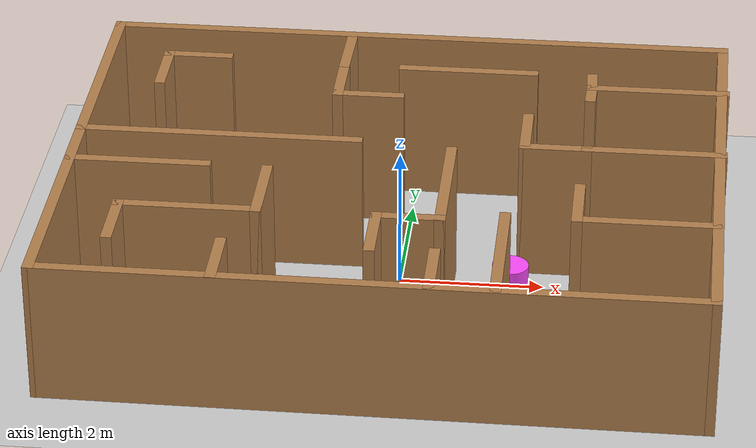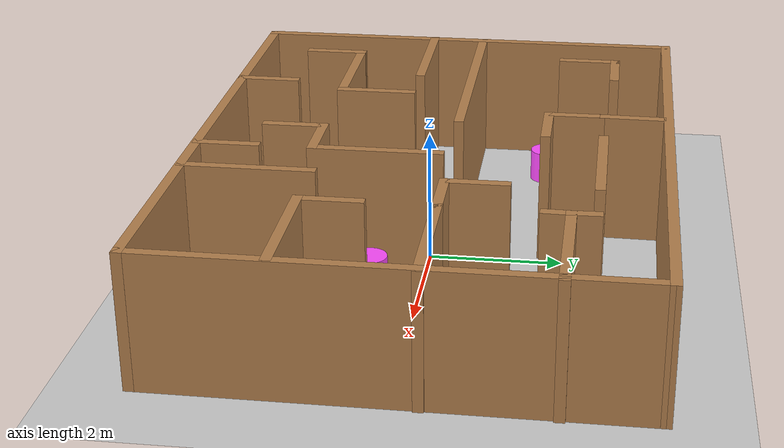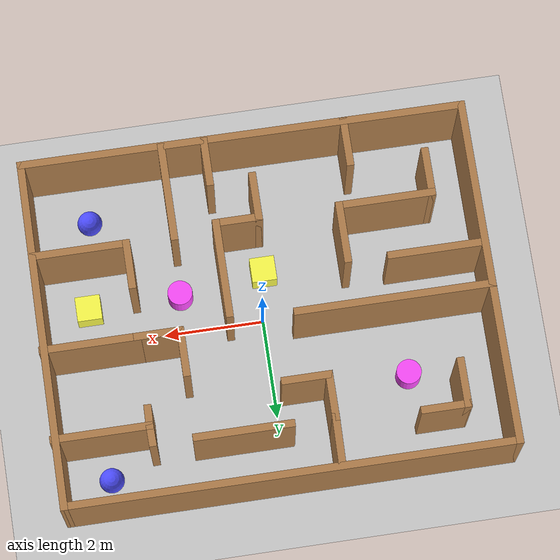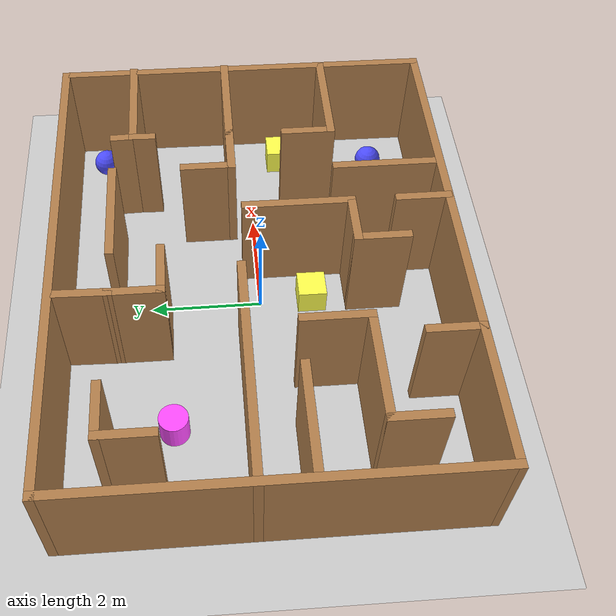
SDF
<sdf version="1.7">
 <world name="default">
  <light name="sun" type="directional">
   <pose>0 0 10 0 -0 0</pose>
   <diffuse>0.8 0.8 0.8 1</diffuse>
   <specular>0.2 0.2 0.2 1</specular>
   <attenuation>
    <range>1000</range>
    <constant>0.9</constant>
    <linear>0.01</linear>
    <quadratic>0.001</quadratic>
   </attenuation>
   <direction>-0.5 0.1 -0.9</direction>
   <spot><inner_angle>0</inner_angle><outer_angle>0</outer_angle><falloff>0</falloff></spot>
  </light>
  <model name="ground_plane">
   <static>1</static>
   <link name="link">
    <collision name="collision">
     <geometry><plane><normal>0 0 1</normal><size>100 100</size></plane></geometry>
     <surface><friction><ode><mu>100</mu><mu2>50</mu2></ode></friction></surface>
    </collision>
    <visual name="visual">
     <cast_shadows>0</cast_shadows>
     <geometry><plane><normal>0 0 1</normal><size>100 100</size></plane></geometry>
     <material>
      <script><uri>file://media/materials/scripts/gazebo.material</uri><name>Gazebo/Grey</name></script>
     </material>
    </visual>
   </link>
  </model>
  <gravity>0 0 -9.8</gravity>
  <magnetic_field>6e-06 2.3e-05 -4.2e-05</magnetic_field>
  <atmosphere type="adiabatic"/>
  <physics type="ode">
   <max_step_size>0.001</max_step_size>
   <real_time_factor>1</real_time_factor>
   <real_time_update_rate>1000</real_time_update_rate>
  </physics>
  <scene><ambient>0.4 0.4 0.4 1</ambient><background>0.7 0.7 0.7 1</background><shadows>1</shadows></scene>
  <audio><device>default</device></audio>
  <spherical_coordinates>
   <surface_model>EARTH_WGS84</surface_model>
   <latitude_deg>0</latitude_deg>
   <longitude_deg>0</longitude_deg>
   <elevation>0</elevation>
   <heading_deg>0</heading_deg>
  </spherical_coordinates>
  <model name="Untitled">
   <pose>-0.044571 0.07141 0.015973 0 -0 0</pose>
   <link name="Wall_1">
    <collision name="Wall_1_Collision">
     <geometry><box><size>9 0.15 2</size></box></geometry>
     <pose>0 0 1 0 -0 0</pose>
    </collision>
    <visual name="Wall_1_Visual">
     <pose>0 0 1 0 -0 0</pose>
     <geometry><box><size>9 0.15 2</size></box></geometry>
     <material>
      <script><uri>file://media/materials/scripts/gazebo.material</uri><name>Gazebo/Wood</name></script>
      <ambient>1 1 1 1</ambient>
     </material>
     <meta><layer>0</layer></meta>
    </visual>
    <pose>-0.013139 3.4425 0 0 -0 0</pose>
   </link>
   <link name="Wall_23">
    <collision name="Wall_23_Collision">
     <geometry><box><size>7 0.15 2</size></box></geometry>
     <pose>0 0 1 0 -0 0</pose>
    </collision>
    <visual name="Wall_23_Visual">
     <pose>0 0 1 0 -0 0</pose>
     <geometry><box><size>7 0.15 2</size></box></geometry>
     <material>
      <script><uri>file://media/materials/scripts/gazebo.material</uri><name>Gazebo/Wood</name></script>
      <ambient>1 1 1 1</ambient>
     </material>
     <meta><layer>0</layer></meta>
    </visual>
    <pose>-4.43814 0.0175 0 0 -0 -1.5708</pose>
   </link>
   <link name="Wall_24">
    <collision name="Wall_24_Collision">
     <geometry><box><size>8.96551 0.15 2</size></box></geometry>
     <pose>0 0 1 0 -0 0</pose>
    </collision>
    <visual name="Wall_24_Visual">
     <pose>0 0 1 0 -0 0</pose>
     <geometry><box><size>8.96551 0.15 2</size></box></geometry>
     <material>
      <script><uri>file://media/materials/scripts/gazebo.material</uri><name>Gazebo/Wood</name></script>
      <ambient>1 1 1 1</ambient>
     </material>
     <meta><layer>0</layer></meta>
    </visual>
    <pose>-0.030639 -3.425 0 0 -0 -0.00397</pose>
   </link>
   <link name="Wall_25">
    <collision name="Wall_25_Collision">
     <geometry><box><size>7.0352 0.15 2</size></box></geometry>
     <pose>0 0 1 0 -0 0</pose>
    </collision>
    <visual name="Wall_25_Visual">
     <pose>0 0 1 0 -0 0</pose>
     <geometry><box><size>7.0352 0.15 2</size></box></geometry>
     <material>
      <script><uri>file://media/materials/scripts/gazebo.material</uri><name>Gazebo/Wood</name></script>
      <ambient>1 1 1 1</ambient>
     </material>
     <meta><layer>0</layer></meta>
    </visual>
    <pose>4.39436 -0 0 0 -0 1.56571</pose>
   </link>
   <link name="Wall_28">
    <collision name="Wall_28_Collision">
     <geometry><box><size>2 0.15 2</size></box></geometry>
     <pose>0 0 1 0 -0 0</pose>
    </collision>
    <visual name="Wall_28_Visual">
     <pose>0 0 1 0 -0 0</pose>
     <geometry><box><size>2 0.15 2</size></box></geometry>
     <material>
      <script><uri>file://media/materials/scripts/gazebo.material</uri><name>Gazebo/Wood</name></script>
      <ambient>1 1 1 1</ambient>
     </material>
     <meta><layer>0</layer></meta>
    </visual>
    <pose>-3.49614 -0.5575 0 0 -0 0</pose>
   </link>
   <link name="Wall_31">
    <collision name="Wall_31_Collision">
     <geometry><box><size>4 0.15 2</size></box></geometry>
     <pose>0 0 1 0 -0 0</pose>
    </collision>
    <visual name="Wall_31_Visual">
     <pose>0 0 1 0 -0 0</pose>
     <geometry><box><size>4 0.15 2</size></box></geometry>
     <material>
      <script><uri>file://media/materials/scripts/gazebo.material</uri><name>Gazebo/Wood</name></script>
      <ambient>1 1 1 1</ambient>
     </material>
     <meta><layer>0</layer></meta>
    </visual>
    <pose>-2.51314 0.2925 0 0 -0 0</pose>
   </link>
   <link name="Wall_35">
    <collision name="Wall_35_Collision">
     <geometry><box><size>1 0.15 2</size></box></geometry>
     <pose>0 0 1 0 -0 0</pose>
    </collision>
    <visual name="Wall_35_Visual">
     <pose>0 0 1 0 -0 0</pose>
     <geometry><box><size>1 0.15 2</size></box></geometry>
     <material>
      <script><uri>file://media/materials/scripts/gazebo.material</uri><name>Gazebo/Wood</name></script>
      <ambient>1 1 1 1</ambient>
     </material>
     <meta><layer>0</layer></meta>
    </visual>
    <pose>-3.57114 -2.1325 0 0 -0 1.5708</pose>
   </link>
   <link name="Wall_36">
    <collision name="Wall_36_Collision">
     <geometry><box><size>2 0.15 2</size></box></geometry>
     <pose>0 0 1 0 -0 0</pose>
    </collision>
    <visual name="Wall_36_Visual">
     <pose>0 0 1 0 -0 0</pose>
     <geometry><box><size>2 0.15 2</size></box></geometry>
     <material>
      <script><uri>file://media/materials/scripts/gazebo.material</uri><name>Gazebo/Wood</name></script>
      <ambient>1 1 1 1</ambient>
     </material>
     <meta><layer>0</layer></meta>
    </visual>
    <pose>-2.64614 -1.7075 0 0 -0 0</pose>
   </link>
   <link name="Wall_37">
    <collision name="Wall_37_Collision">
     <geometry><box><size>1.25 0.15 2</size></box></geometry>
     <pose>0 0 1 0 -0 0</pose>
    </collision>
    <visual name="Wall_37_Visual">
     <pose>0 0 1 0 -0 0</pose>
     <geometry><box><size>1.25 0.15 2</size></box></geometry>
     <material>
      <script><uri>file://media/materials/scripts/gazebo.material</uri><name>Gazebo/Wood</name></script>
      <ambient>1 1 1 1</ambient>
     </material>
     <meta><layer>0</layer></meta>
    </visual>
    <pose>-1.72114 -1.1575 0 0 -0 1.5708</pose>
   </link>
   <link name="Wall_40">
    <collision name="Wall_40_Collision">
     <geometry><box><size>1 0.15 2</size></box></geometry>
     <pose>0 0 1 0 -0 0</pose>
    </collision>
    <visual name="Wall_40_Visual">
     <pose>0 0 1 0 -0 0</pose>
     <geometry><box><size>1 0.15 2</size></box></geometry>
     <material>
      <script><uri>file://media/materials/scripts/gazebo.material</uri><name>Gazebo/Wood</name></script>
      <ambient>1 1 1 1</ambient>
     </material>
     <meta><layer>0</layer></meta>
    </visual>
    <pose>-2.07114 -2.9825 0 0 -0 1.5708</pose>
   </link>
   <link name="Wall_43">
    <collision name="Wall_43_Collision">
     <geometry><box><size>2 0.15 2</size></box></geometry>
     <pose>0 0 1 0 -0 0</pose>
    </collision>
    <visual name="Wall_43_Visual">
     <pose>0 0 1 0 -0 0</pose>
     <geometry><box><size>2 0.15 2</size></box></geometry>
     <material>
      <script><uri>file://media/materials/scripts/gazebo.material</uri><name>Gazebo/Wood</name></script>
      <ambient>1 1 1 1</ambient>
     </material>
     <meta><layer>0</layer></meta>
    </visual>
    <pose>1.57886 -2.4825 0 0 -0 1.5708</pose>
   </link>
   <link name="Wall_46">
    <collision name="Wall_46_Collision">
     <geometry><box><size>1 0.15 2</size></box></geometry>
     <pose>0 0 1 0 -0 0</pose>
    </collision>
    <visual name="Wall_46_Visual">
     <pose>0 0 1 0 -0 0</pose>
     <geometry><box><size>1 0.15 2</size></box></geometry>
     <material>
      <script><uri>file://media/materials/scripts/gazebo.material</uri><name>Gazebo/Wood</name></script>
      <ambient>1 1 1 1</ambient>
     </material>
     <meta><layer>0</layer></meta>
    </visual>
    <pose>0.728861 -2.9825 0 0 -0 1.5708</pose>
   </link>
   <link name="Wall_48">
    <collision name="Wall_48_Collision">
     <geometry><box><size>1 0.15 2</size></box></geometry>
     <pose>0 0 1 0 -0 0</pose>
    </collision>
    <visual name="Wall_48_Visual">
     <pose>0 0 1 0 -0 0</pose>
     <geometry><box><size>1 0.15 2</size></box></geometry>
     <material>
      <script><uri>file://media/materials/scripts/gazebo.material</uri><name>Gazebo/Wood</name></script>
      <ambient>1 1 1 1</ambient>
     </material>
     <meta><layer>0</layer></meta>
    </visual>
    <pose>-0.121139 -2.1325 0 0 -0 1.5708</pose>
   </link>
   <link name="Wall_49">
    <collision name="Wall_49_Collision">
     <geometry><box><size>1 0.15 2</size></box></geometry>
     <pose>0 0 1 0 -0 0</pose>
    </collision>
    <visual name="Wall_49_Visual">
     <pose>0 0 1 0 -0 0</pose>
     <geometry><box><size>1 0.15 2</size></box></geometry>
     <material>
      <script><uri>file://media/materials/scripts/gazebo.material</uri><name>Gazebo/Wood</name></script>
      <ambient>1 1 1 1</ambient>
     </material>
     <meta><layer>0</layer></meta>
    </visual>
    <pose>0.303861 -1.7075 0 0 -0 0</pose>
   </link>
   <link name="Wall_50">
    <collision name="Wall_50_Collision">
     <geometry><box><size>2 0.15 2</size></box></geometry>
     <pose>0 0 1 0 -0 0</pose>
    </collision>
    <visual name="Wall_50_Visual">
     <pose>0 0 1 0 -0 0</pose>
     <geometry><box><size>2 0.15 2</size></box></geometry>
     <material>
      <script><uri>file://media/materials/scripts/gazebo.material</uri><name>Gazebo/Wood</name></script>
      <ambient>1 1 1 1</ambient>
     </material>
     <meta><layer>0</layer></meta>
    </visual>
    <pose>0.728861 -0.7825 0 0 -0 1.5708</pose>
   </link>
   <link name="Wall_53">
    <collision name="Wall_53_Collision">
     <geometry><box><size>1.98253 0.15 2</size></box></geometry>
     <pose>0 0 1 0 -0 0</pose>
    </collision>
    <visual name="Wall_53_Visual">
     <pose>0 0 1 0 -0 0</pose>
     <geometry><box><size>1.98253 0.15 2</size></box></geometry>
     <material>
      <script><uri>file://media/materials/scripts/gazebo.material</uri><name>Gazebo/Wood</name></script>
      <ambient>1 1 1 1</ambient>
     </material>
     <meta><layer>0</layer></meta>
    </visual>
    <pose>3.44336 -1.5575 0 0 -0 3.14159</pose>
   </link>
   <link name="Wall_54">
    <collision name="Wall_54_Collision">
     <geometry><box><size>1 0.15 2</size></box></geometry>
     <pose>0 0 1 0 -0 0</pose>
    </collision>
    <visual name="Wall_54_Visual">
     <pose>0 0 1 0 -0 0</pose>
     <geometry><box><size>1 0.15 2</size></box></geometry>
     <material>
      <script><uri>file://media/materials/scripts/gazebo.material</uri><name>Gazebo/Wood</name></script>
      <ambient>1 1 1 1</ambient>
     </material>
     <meta><layer>0</layer></meta>
    </visual>
    <pose>2.52686 -1.1325 0 0 -0 1.5708</pose>
   </link>
   <link name="Wall_57">
    <collision name="Wall_57_Collision">
     <geometry><box><size>2.01759 0.15 2</size></box></geometry>
     <pose>0 0 1 0 -0 0</pose>
    </collision>
    <visual name="Wall_57_Visual">
     <pose>0 0 1 0 -0 0</pose>
     <geometry><box><size>2.01759 0.15 2</size></box></geometry>
     <material>
      <script><uri>file://media/materials/scripts/gazebo.material</uri><name>Gazebo/Wood</name></script>
      <ambient>1 1 1 1</ambient>
     </material>
     <meta><layer>0</layer></meta>
    </visual>
    <pose>3.50486 2.1185 0 0 -0 3.14159</pose>
   </link>
   <link name="Wall_58">
    <collision name="Wall_58_Collision">
     <geometry><box><size>0.491178 0.15 2</size></box></geometry>
     <pose>0 0 1 0 -0 0</pose>
    </collision>
    <visual name="Wall_58_Visual">
     <pose>0 0 1 0 -0 0</pose>
     <geometry><box><size>0.491178 0.15 2</size></box></geometry>
     <material>
      <script><uri>file://media/materials/scripts/gazebo.material</uri><name>Gazebo/Wood</name></script>
      <ambient>1 1 1 1</ambient>
     </material>
     <meta><layer>0</layer></meta>
    </visual>
    <pose>2.56636 1.948 0 0 -0 -1.59718</pose>
   </link>
   <link name="Wall_60">
    <collision name="Wall_60_Collision">
     <geometry><box><size>0.491575 0.15 2</size></box></geometry>
     <pose>0 0 1 0 -0 0</pose>
    </collision>
    <visual name="Wall_60_Visual">
     <pose>0 0 1 0 -0 0</pose>
     <geometry><box><size>0.491575 0.15 2</size></box></geometry>
     <material>
      <script><uri>file://media/materials/scripts/gazebo.material</uri><name>Gazebo/Wood</name></script>
      <ambient>1 1 1 1</ambient>
     </material>
     <meta><layer>0</layer></meta>
    </visual>
    <pose>2.56636 2.2895 0 0 -0 1.59711</pose>
   </link>
   <link name="Wall_62">
    <collision name="Wall_62_Collision">
     <geometry><box><size>2 0.15 2</size></box></geometry>
     <pose>0 0 1 0 -0 0</pose>
    </collision>
    <visual name="Wall_62_Visual">
     <pose>0 0 1 0 -0 0</pose>
     <geometry><box><size>2 0.15 2</size></box></geometry>
     <material>
      <script><uri>file://media/materials/scripts/gazebo.material</uri><name>Gazebo/Wood</name></script>
      <ambient>1 1 1 1</ambient>
     </material>
     <meta><layer>0</layer></meta>
    </visual>
    <pose>3.49586 0.3375 0 0 -0 3.14159</pose>
   </link>
   <link name="Wall_63">
    <collision name="Wall_63_Collision">
     <geometry><box><size>1 0.15 2</size></box></geometry>
     <pose>0 0 1 0 -0 0</pose>
    </collision>
    <visual name="Wall_63_Visual">
     <pose>0 0 1 0 -0 0</pose>
     <geometry><box><size>1 0.15 2</size></box></geometry>
     <material>
      <script><uri>file://media/materials/scripts/gazebo.material</uri><name>Gazebo/Wood</name></script>
      <ambient>1 1 1 1</ambient>
     </material>
     <meta><layer>0</layer></meta>
    </visual>
    <pose>2.14586 0.3375 0 0 -0 3.14159</pose>
   </link>
   <link name="Wall_64">
    <collision name="Wall_64_Collision">
     <geometry><box><size>1 0.15 2</size></box></geometry>
     <pose>0 0 1 0 -0 0</pose>
    </collision>
    <visual name="Wall_64_Visual">
     <pose>0 0 1 0 -0 0</pose>
     <geometry><box><size>1 0.15 2</size></box></geometry>
     <material>
      <script><uri>file://media/materials/scripts/gazebo.material</uri><name>Gazebo/Wood</name></script>
      <ambient>1 1 1 1</ambient>
     </material>
     <meta><layer>0</layer></meta>
    </visual>
    <pose>1.72086 0.7625 0 0 -0 1.5708</pose>
   </link>
   <link name="Wall_67">
    <collision name="Wall_67_Collision">
     <geometry><box><size>2 0.15 2</size></box></geometry>
     <pose>0 0 1 0 -0 0</pose>
    </collision>
    <visual name="Wall_67_Visual">
     <pose>0 0 1 0 -0 0</pose>
     <geometry><box><size>2 0.15 2</size></box></geometry>
     <material>
      <script><uri>file://media/materials/scripts/gazebo.material</uri><name>Gazebo/Wood</name></script>
      <ambient>1 1 1 1</ambient>
     </material>
     <meta><layer>0</layer></meta>
    </visual>
    <pose>0.786861 2.4775 0 0 -0 3.14159</pose>
   </link>
   <link name="Wall_70">
    <collision name="Wall_70_Collision">
     <geometry><box><size>1 0.15 2</size></box></geometry>
     <pose>0 0 1 0 -0 0</pose>
    </collision>
    <visual name="Wall_70_Visual">
     <pose>0 0 1 0 -0 0</pose>
     <geometry><box><size>1 0.15 2</size></box></geometry>
     <material>
      <script><uri>file://media/materials/scripts/gazebo.material</uri><name>Gazebo/Wood</name></script>
      <ambient>1 1 1 1</ambient>
     </material>
     <meta><layer>0</layer></meta>
    </visual>
    <pose>-0.996639 2.9025 0 0 -0 1.5508</pose>
   </link>
   <link name="Wall_72">
    <collision name="Wall_72_Collision">
     <geometry><box><size>1 0.15 2</size></box></geometry>
     <pose>0 0 1 0 -0 0</pose>
    </collision>
    <visual name="Wall_72_Visual">
     <pose>0 0 1 0 -0 0</pose>
     <geometry><box><size>1 0.15 2</size></box></geometry>
     <material>
      <script><uri>file://media/materials/scripts/gazebo.material</uri><name>Gazebo/Wood</name></script>
      <ambient>1 1 1 1</ambient>
     </material>
     <meta><layer>0</layer></meta>
    </visual>
    <pose>-1.00514 2.0525 0 0 -0 -1.5708</pose>
   </link>
   <link name="Wall_73">
    <collision name="Wall_73_Collision">
     <geometry><box><size>1.017 0.15 2</size></box></geometry>
     <pose>0 0 1 0 -0 0</pose>
    </collision>
    <visual name="Wall_73_Visual">
     <pose>0 0 1 0 -0 0</pose>
     <geometry><box><size>1.017 0.15 2</size></box></geometry>
     <material>
      <script><uri>file://media/materials/scripts/gazebo.material</uri><name>Gazebo/Wood</name></script>
      <ambient>1 1 1 1</ambient>
     </material>
     <meta><layer>0</layer></meta>
    </visual>
    <pose>-0.571639 1.6275 0 0 -0 0</pose>
   </link>
   <link name="Wall_77">
    <collision name="Wall_77_Collision">
     <geometry><box><size>1 0.15 2</size></box></geometry>
     <pose>0 0 1 0 -0 0</pose>
    </collision>
    <visual name="Wall_77_Visual">
     <pose>0 0 1 0 -0 0</pose>
     <geometry><box><size>1 0.15 2</size></box></geometry>
     <material>
      <script><uri>file://media/materials/scripts/gazebo.material</uri><name>Gazebo/Wood</name></script>
      <ambient>1 1 1 1</ambient>
     </material>
     <meta><layer>0</layer></meta>
    </visual>
    <pose>-3.14614 2.5925 0 0 -0 0</pose>
   </link>
   <link name="Wall_79">
    <collision name="Wall_79_Collision">
     <geometry><box><size>1 0.15 2</size></box></geometry>
     <pose>0 0 1 0 -0 0</pose>
    </collision>
    <visual name="Wall_79_Visual">
     <pose>0 0 1 0 -0 0</pose>
     <geometry><box><size>1 0.15 2</size></box></geometry>
     <material>
      <script><uri>file://media/materials/scripts/gazebo.material</uri><name>Gazebo/Wood</name></script>
      <ambient>1 1 1 1</ambient>
     </material>
     <meta><layer>0</layer></meta>
    </visual>
    <pose>-3.57114 2.1675 0 0 -0 -1.5708</pose>
   </link>
   <static>1</static>
  </model>
  <model name="Yellow_box">
   <link name="link">
    <inertial>
     <mass>1</mass>
     <inertia>
      <ixx>0.166667</ixx>
      <ixy>0</ixy>
      <ixz>0</ixz>
      <iyy>0.166667</iyy>
      <iyz>0</iyz>
      <izz>0.166667</izz>
     </inertia>
    </inertial>
    <visual name="visual">
     <geometry><box><size>0.5 0.5 0.5</size></box></geometry>
     <material>
      <script><name>Gazebo/Grey</name><uri>file://media/materials/scripts/gazebo.material</uri></script>
      <shader type="pixel"><normal_map>__default__</normal_map></shader>
      <ambient>1 1 0.3 1</ambient>
      <diffuse>0.7 0.7 0.7 1</diffuse>
      <specular>0.01 0.01 0.01 1</specular>
      <emissive>0 0 0 1</emissive>
     </material>
    </visual>
    <collision name="collision">
     <geometry><box><size>1 1 1</size></box></geometry>
     <surface>
      <friction>
       <ode><mu>1</mu><mu2>1</mu2><fdir1>0 0 0</fdir1><slip1>0</slip1><slip2>0</slip2></ode>
       <torsional>
        <coefficient>1</coefficient>
        <patch_radius>0</patch_radius>
        <surface_radius>0</surface_radius>
        <use_patch_radius>1</use_patch_radius>
        <ode><slip>0</slip></ode>
       </torsional>
      </friction>
      <bounce><restitution_coefficient>0</restitution_coefficient><threshold>1e+06</threshold></bounce>
      <contact>
       <collide_without_contact>0</collide_without_contact>
       <collide_without_contact_bitmask>1</collide_without_contact_bitmask>
       <collide_bitmask>1</collide_bitmask>
       <ode>
        <soft_cfm>0</soft_cfm>
        <soft_erp>0.2</soft_erp>
        <kp>1e+13</kp>
        <kd>1</kd>
        <max_vel>0.01</max_vel>
        <min_depth>0</min_depth>
       </ode>
       <bullet>
        <split_impulse>1</split_impulse>
        <split_impulse_penetration_threshold>-0.01</split_impulse_penetration_threshold>
        <soft_cfm>0</soft_cfm>
        <soft_erp>0.2</soft_erp>
        <kp>1e+13</kp>
        <kd>1</kd>
       </bullet>
      </contact>
     </surface>
    </collision>
   </link>
   <static>0</static>
   <pose>-0.142369 -0.906934 0.499995 0 -1e-05 0</pose>
  </model>
  <model name="Yellow_box_0">
   <link name="link">
    <inertial>
     <mass>1</mass>
     <inertia>
      <ixx>0.166667</ixx>
      <ixy>0</ixy>
      <ixz>0</ixz>
      <iyy>0.166667</iyy>
      <iyz>0</iyz>
      <izz>0.166667</izz>
     </inertia>
    </inertial>
    <visual name="visual">
     <geometry><box><size>0.5 0.5 0.5</size></box></geometry>
     <material>
      <script><name>Gazebo/Grey</name><uri>file://media/materials/scripts/gazebo.material</uri></script>
      <shader type="pixel"><normal_map>__default__</normal_map></shader>
      <ambient>1 1 0.3 1</ambient>
      <diffuse>0.7 0.7 0.7 1</diffuse>
      <specular>0.01 0.01 0.01 1</specular>
      <emissive>0 0 0 1</emissive>
     </material>
    </visual>
    <collision name="collision">
     <geometry><box><size>1 1 1</size></box></geometry>
     <surface>
      <friction>
       <ode><mu>1</mu><mu2>1</mu2><fdir1>0 0 0</fdir1><slip1>0</slip1><slip2>0</slip2></ode>
       <torsional>
        <coefficient>1</coefficient>
        <patch_radius>0</patch_radius>
        <surface_radius>0</surface_radius>
        <use_patch_radius>1</use_patch_radius>
        <ode><slip>0</slip></ode>
       </torsional>
      </friction>
      <bounce><restitution_coefficient>0</restitution_coefficient><threshold>1e+06</threshold></bounce>
      <contact>
       <collide_without_contact>0</collide_without_contact>
       <collide_without_contact_bitmask>1</collide_without_contact_bitmask>
       <collide_bitmask>1</collide_bitmask>
       <ode>
        <soft_cfm>0</soft_cfm>
        <soft_erp>0.2</soft_erp>
        <kp>1e+13</kp>
        <kd>1</kd>
        <max_vel>0.01</max_vel>
        <min_depth>0</min_depth>
       </ode>
       <bullet>
        <split_impulse>1</split_impulse>
        <split_impulse_penetration_threshold>-0.01</split_impulse_penetration_threshold>
        <soft_cfm>0</soft_cfm>
        <soft_erp>0.2</soft_erp>
        <kp>1e+13</kp>
        <kd>1</kd>
       </bullet>
      </contact>
     </surface>
    </collision>
   </link>
   <static>0</static>
   <pose>3.42603 -0.619909 0.5 0 -0 0</pose>
  </model>
  <model name="Purple__0">
   <link name="link">
    <inertial>
     <mass>1</mass>
     <inertia><ixx>0.145833</ixx><ixy>0</ixy><ixz>0</ixz><iyy>0.145833</iyy><iyz>0</iyz><izz>0.125</izz></inertia>
    </inertial>
    <visual name="visual">
     <geometry><cylinder><radius>0.25</radius><length>0.5</length></cylinder></geometry>
     <material>
      <script><name>Gazebo/Grey</name><uri>file://media/materials/scripts/gazebo.material</uri></script>
      <shader type="pixel"><normal_map>__default__</normal_map></shader>
      <ambient>1 0.3 1 1</ambient>
      <diffuse>0.7 0.7 0.7 1</diffuse>
      <specular>0.01 0.01 0.01 1</specular>
      <emissive>0 0 0 1</emissive>
     </material>
    </visual>
    <collision name="collision">
     <geometry><cylinder><radius>0.5</radius><length>1</length></cylinder></geometry>
     <surface>
      <friction>
       <ode><mu>1</mu><mu2>1</mu2><fdir1>0 0 0</fdir1><slip1>0</slip1><slip2>0</slip2></ode>
       <torsional>
        <coefficient>1</coefficient>
        <patch_radius>0</patch_radius>
        <surface_radius>0</surface_radius>
        <use_patch_radius>1</use_patch_radius>
        <ode><slip>0</slip></ode>
       </torsional>
      </friction>
      <bounce><restitution_coefficient>0</restitution_coefficient><threshold>1e+06</threshold></bounce>
      <contact>
       <collide_without_contact>0</collide_without_contact>
       <collide_without_contact_bitmask>1</collide_without_contact_bitmask>
       <collide_bitmask>1</collide_bitmask>
       <ode>
        <soft_cfm>0</soft_cfm>
        <soft_erp>0.2</soft_erp>
        <kp>1e+13</kp>
        <kd>1</kd>
        <max_vel>0.01</max_vel>
        <min_depth>0</min_depth>
       </ode>
       <bullet>
        <split_impulse>1</split_impulse>
        <split_impulse_penetration_threshold>-0.01</split_impulse_penetration_threshold>
        <soft_cfm>0</soft_cfm>
        <soft_erp>0.2</soft_erp>
        <kp>1e+13</kp>
        <kd>1</kd>
       </bullet>
      </contact>
     </surface>
    </collision>
   </link>
   <static>0</static>
   <pose>1.57386 -0.664622 0.499991 0 -0 0</pose>
  </model>
  <model name="Purple__1">
   <link name="link">
    <inertial>
     <mass>1</mass>
     <inertia><ixx>0.145833</ixx><ixy>0</ixy><ixz>0</ixz><iyy>0.145833</iyy><iyz>0</iyz><izz>0.125</izz></inertia>
    </inertial>
    <visual name="visual">
     <geometry><cylinder><radius>0.25</radius><length>0.5</length></cylinder></geometry>
     <material>
      <script><name>Gazebo/Grey</name><uri>file://media/materials/scripts/gazebo.material</uri></script>
      <shader type="pixel"><normal_map>__default__</normal_map></shader>
      <ambient>1 0.3 1 1</ambient>
      <diffuse>0.7 0.7 0.7 1</diffuse>
      <specular>0.01 0.01 0.01 1</specular>
      <emissive>0 0 0 1</emissive>
     </material>
    </visual>
    <collision name="collision">
     <geometry><cylinder><radius>0.5</radius><length>1</length></cylinder></geometry>
     <surface>
      <friction>
       <ode><mu>1</mu><mu2>1</mu2><fdir1>0 0 0</fdir1><slip1>0</slip1><slip2>0</slip2></ode>
       <torsional>
        <coefficient>1</coefficient>
        <patch_radius>0</patch_radius>
        <surface_radius>0</surface_radius>
        <use_patch_radius>1</use_patch_radius>
        <ode><slip>0</slip></ode>
       </torsional>
      </friction>
      <bounce><restitution_coefficient>0</restitution_coefficient><threshold>1e+06</threshold></bounce>
      <contact>
       <collide_without_contact>0</collide_without_contact>
       <collide_without_contact_bitmask>1</collide_without_contact_bitmask>
       <collide_bitmask>1</collide_bitmask>
       <ode>
        <soft_cfm>0</soft_cfm>
        <soft_erp>0.2</soft_erp>
        <kp>1e+13</kp>
        <kd>1</kd>
        <max_vel>0.01</max_vel>
        <min_depth>0</min_depth>
       </ode>
       <bullet>
        <split_impulse>1</split_impulse>
        <split_impulse_penetration_threshold>-0.01</split_impulse_penetration_threshold>
        <soft_cfm>0</soft_cfm>
        <soft_erp>0.2</soft_erp>
        <kp>1e+13</kp>
        <kd>1</kd>
       </bullet>
      </contact>
     </surface>
    </collision>
   </link>
   <static>0</static>
   <pose>-2.69773 1.60405 0.499991 0 -0 0</pose>
  </model>
  <model name="blue">
   <link name="link">
    <inertial>
     <mass>1</mass>
     <inertia><ixx>0.1</ixx><ixy>0</ixy><ixz>0</ixz><iyy>0.1</iyy><iyz>0</iyz><izz>0.1</izz></inertia>
    </inertial>
    <visual name="visual">
     <geometry><sphere><radius>0.25</radius></sphere></geometry>
     <material>
      <script><name>Gazebo/Grey</name><uri>file://media/materials/scripts/gazebo.material</uri></script>
      <shader type="pixel"><normal_map>__default__</normal_map></shader>
      <ambient>0.3 0.3 1 1</ambient>
      <diffuse>0.7 0.7 0.7 1</diffuse>
      <specular>0.01 0.01 0.01 1</specular>
      <emissive>0 0 0 1</emissive>
     </material>
    </visual>
    <collision name="collision">
     <geometry><sphere><radius>0.5</radius></sphere></geometry>
     <surface>
      <friction>
       <ode><mu>1</mu><mu2>1</mu2><fdir1>0 0 0</fdir1><slip1>0</slip1><slip2>0</slip2></ode>
       <torsional>
        <coefficient>1</coefficient>
        <patch_radius>0</patch_radius>
        <surface_radius>0</surface_radius>
        <use_patch_radius>1</use_patch_radius>
        <ode><slip>0</slip></ode>
       </torsional>
      </friction>
      <bounce><restitution_coefficient>0</restitution_coefficient><threshold>1e+06</threshold></bounce>
      <contact>
       <collide_without_contact>0</collide_without_contact>
       <collide_without_contact_bitmask>1</collide_without_contact_bitmask>
       <collide_bitmask>1</collide_bitmask>
       <ode>
        <soft_cfm>0</soft_cfm>
        <soft_erp>0.2</soft_erp>
        <kp>1e+13</kp>
        <kd>1</kd>
        <max_vel>0.01</max_vel>
        <min_depth>0</min_depth>
       </ode>
       <bullet>
        <split_impulse>1</split_impulse>
        <split_impulse_penetration_threshold>-0.01</split_impulse_penetration_threshold>
        <soft_cfm>0</soft_cfm>
        <soft_erp>0.2</soft_erp>
        <kp>1e+13</kp>
        <kd>1</kd>
       </bullet>
      </contact>
     </surface>
    </collision>
   </link>
   <static>0</static>
   <pose>3.43092 2.86949 0.5 0 -0 0</pose>
  </model>
  <model name="blue_0">
   <link name="link">
    <inertial>
     <mass>1</mass>
     <inertia><ixx>0.1</ixx><ixy>0</ixy><ixz>0</ixz><iyy>0.1</iyy><iyz>0</iyz><izz>0.1</izz></inertia>
    </inertial>
    <visual name="visual">
     <geometry><sphere><radius>0.25</radius></sphere></geometry>
     <material>
      <script><name>Gazebo/Grey</name><uri>file://media/materials/scripts/gazebo.material</uri></script>
      <shader type="pixel"><normal_map>__default__</normal_map></shader>
      <ambient>0.3 0.3 1 1</ambient>
      <diffuse>0.7 0.7 0.7 1</diffuse>
      <specular>0.01 0.01 0.01 1</specular>
      <emissive>0 0 0 1</emissive>
     </material>
    </visual>
    <collision name="collision">
     <geometry><sphere><radius>0.5</radius></sphere></geometry>
     <surface>
      <friction>
       <ode><mu>1</mu><mu2>1</mu2><fdir1>0 0 0</fdir1><slip1>0</slip1><slip2>0</slip2></ode>
       <torsional>
        <coefficient>1</coefficient>
        <patch_radius>0</patch_radius>
        <surface_radius>0</surface_radius>
        <use_patch_radius>1</use_patch_radius>
        <ode><slip>0</slip></ode>
       </torsional>
      </friction>
      <bounce><restitution_coefficient>0</restitution_coefficient><threshold>1e+06</threshold></bounce>
      <contact>
       <collide_without_contact>0</collide_without_contact>
       <collide_without_contact_bitmask>1</collide_without_contact_bitmask>
       <collide_bitmask>1</collide_bitmask>
       <ode>
        <soft_cfm>0</soft_cfm>
        <soft_erp>0.2</soft_erp>
        <kp>1e+13</kp>
        <kd>1</kd>
        <max_vel>0.01</max_vel>
        <min_depth>0</min_depth>
       </ode>
       <bullet>
        <split_impulse>1</split_impulse>
        <split_impulse_penetration_threshold>-0.01</split_impulse_penetration_threshold>
        <soft_cfm>0</soft_cfm>
        <soft_erp>0.2</soft_erp>
        <kp>1e+13</kp>
        <kd>1</kd>
       </bullet>
      </contact>
     </surface>
    </collision>
   </link>
   <static>0</static>
   <pose>3.17416 -2.42114 0.5 0 -0 0</pose>
  </model>
 </world>
</sdf>
